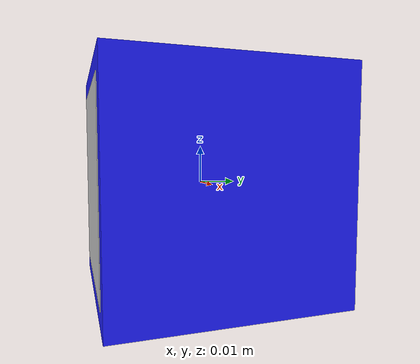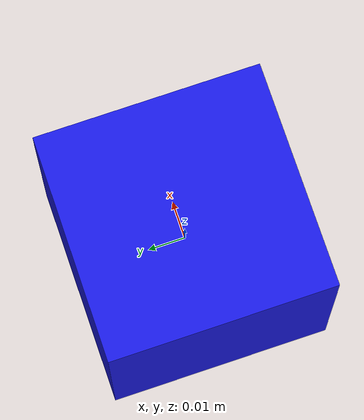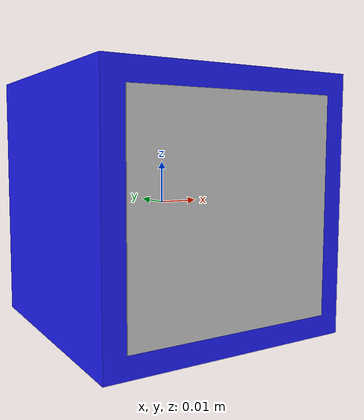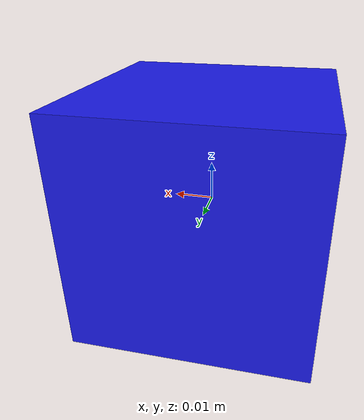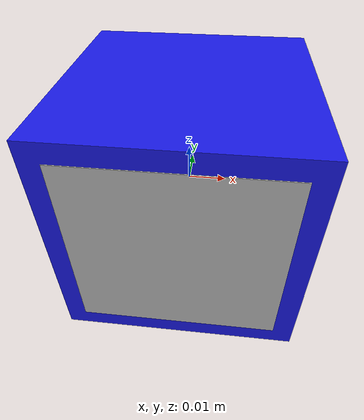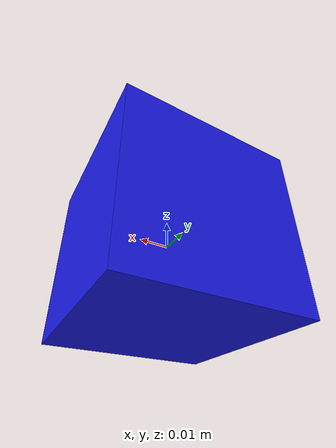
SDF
<?xml version="1.0"?>
<sdf version="1.6">
  <model name="cube_large">
    <link name="cube_link">
      <inertial>
        <mass>0.12</mass>
        <inertia>
          <ixx>0.000072</ixx><ixy>0</ixy><ixz>0</ixz>
          <iyy>0.000072</iyy><iyz>0</iyz><izz>0.000072</izz>
        </inertia>
      </inertial>

      <collision name="collision">
        <geometry><box><size>0.06 0.06 0.06</size></box></geometry>
        <surface>
          <friction><ode><mu>100.0</mu><mu2>100.0</mu2></ode></friction>
          <contact>
            <ode>
              <kp>1000000.0</kp>
              <kd>1.0</kd>
              <max_vel>0.0</max_vel>
              <min_depth>0.001</min_depth>
            </ode>
          </contact>
        </surface>
      </collision>

      <visual name="cube_visual">
        <geometry><box><size>0.06 0.06 0.06</size></box></geometry>
        <material>
          <ambient>0.1 0.1 0.8 1</ambient>
          <diffuse>0.1 0.1 0.9 1</diffuse>
        </material>
      </visual>

      <visual name="aruco_marker">
        <pose>0 -0.0301 0 -1.5708 0 0</pose>
        <geometry><box><size>0.05 0.05 0.0002</size></box></geometry>
        <material>
          <script>
            <uri>model://cube_large/materials/scripts</uri>
            <uri>model://cube_large/materials/textures</uri>
            <name>CubeLarge/Aruco</name>
          </script>
        </material>
      </visual>
    </link>
  </model>
</sdf>
